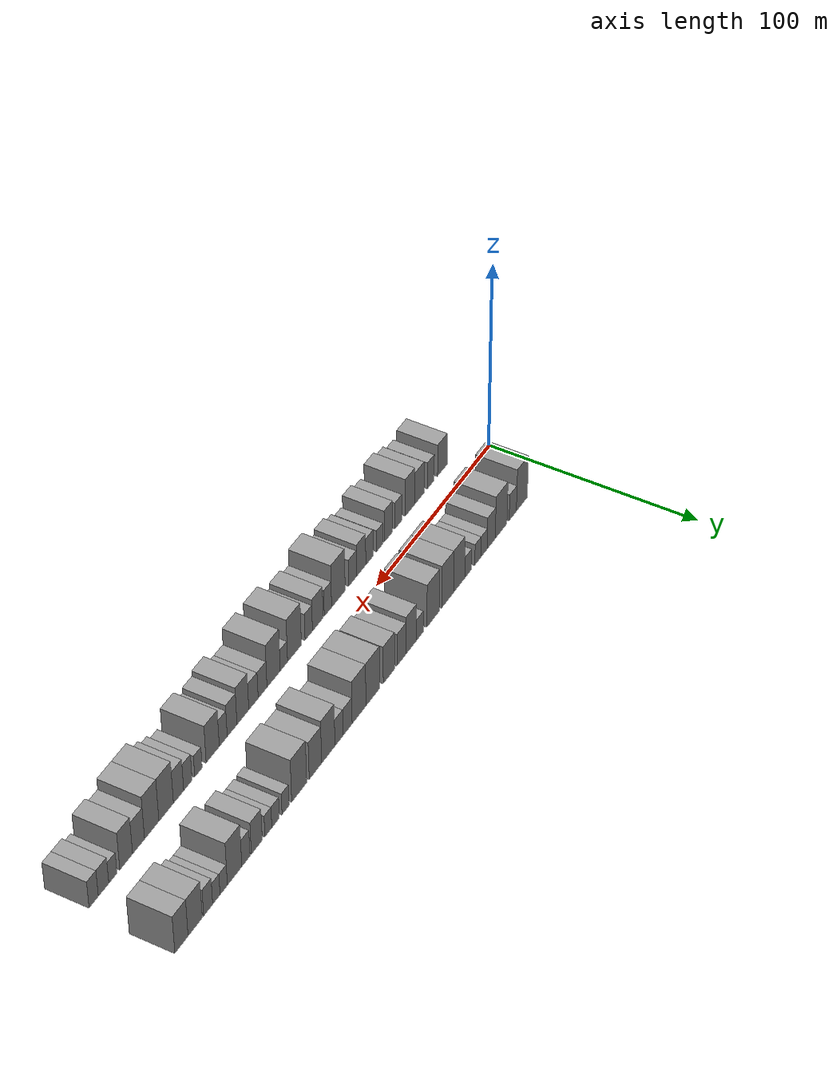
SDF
<sdf version="1.6">
 <world name="default">
  <scene>
   <sky><clouds><speed>12</speed></clouds></sky>
   <ambient>0.4 0.4 0.4 1</ambient>
   <background>0.7 0.7 0.7 1</background>
   <shadows>1</shadows>
  </scene>
  <gravity>0 0 -9.8066</gravity>
  <magnetic_field>6e-06 2.3e-05 -4.2e-05</magnetic_field>
  <physics default="0" name="default_physics" type="ode">
   <ode>
    <solver>
     <type>quick</type>
     <iters>10</iters>
     <sor>1.0</sor>
     <use_dynamic_moi_rescaling>0</use_dynamic_moi_rescaling>
    </solver>
    <constraints>
     <cfm>0</cfm>
     <erp>0.2</erp>
     <contact_max_correcting_vel>100</contact_max_correcting_vel>
     <contact_surface_layer>0.001</contact_surface_layer>
    </constraints>
   </ode>
   <max_step_size>0.004</max_step_size>
   <real_time_factor>1</real_time_factor>
   <real_time_update_rate>250</real_time_update_rate>
  </physics>
  <light name="sun" type="directional">
   <pose>0 0 10 0 0 0</pose>
   <diffuse>0.8 0.8 0.8 1</diffuse>
   <specular>0.2 0.2 0.2 1</specular>
   <attenuation>
    <range>1000</range>
    <constant>0.9</constant>
    <linear>0.01</linear>
    <quadratic>0.001</quadratic>
   </attenuation>
   <direction>-0.5 0.1 -0.9</direction>
  </light>
  <model name="building_1">
   <static>1</static>
   <pose>27.1083 20.0000 0 0.000000 0.000000 1.570796</pose>
   <link name="link">
    <pose>0 0 12.00 0 0 0</pose>
    <collision name="collision"><geometry><box><size>20.0000 10.2167 24.0000</size></box></geometry></collision>
    <visual name="visual">
     <cast_shadows>0</cast_shadows>
     <geometry><box><size>20.0000 10.2167 24.0000</size></box></geometry>
     <material>
      <script>
       <uri>model://grey_wall/materials/scripts</uri>
       <uri>model://grey_wall/materials/textures</uri>
       <name>vrc/grey_wall</name>
      </script>
     </material>
    </visual>
   </link>
  </model>
  <model name="building_2">
   <static>1</static>
   <pose>35.5468 20.0000 0 0.000000 0.000000 1.570796</pose>
   <link name="link">
    <pose>0 0 7.50 0 0 0</pose>
    <collision name="collision"><geometry><box><size>20.0000 6.6602 15.0000</size></box></geometry></collision>
    <visual name="visual">
     <cast_shadows>0</cast_shadows>
     <geometry><box><size>20.0000 6.6602 15.0000</size></box></geometry>
     <material>
      <script>
       <uri>model://grey_wall/materials/scripts</uri>
       <uri>model://grey_wall/materials/textures</uri>
       <name>vrc/grey_wall</name>
      </script>
     </material>
    </visual>
   </link>
  </model>
  <model name="building_3">
   <static>1</static>
   <pose>46.1967 20.0000 0 0.000000 0.000000 1.570796</pose>
   <link name="link">
    <pose>0 0 12.00 0 0 0</pose>
    <collision name="collision"><geometry><box><size>20.0000 10.6396 24.0000</size></box></geometry></collision>
    <visual name="visual">
     <cast_shadows>0</cast_shadows>
     <geometry><box><size>20.0000 10.6396 24.0000</size></box></geometry>
     <material>
      <script>
       <uri>model://grey_wall/materials/scripts</uri>
       <uri>model://grey_wall/materials/textures</uri>
       <name>vrc/grey_wall</name>
      </script>
     </material>
    </visual>
   </link>
  </model>
  <model name="building_4">
   <static>1</static>
   <pose>55.1658 20.0000 0 0.000000 0.000000 1.570796</pose>
   <link name="link">
    <pose>0 0 9.00 0 0 0</pose>
    <collision name="collision"><geometry><box><size>20.0000 7.2986 18.0000</size></box></geometry></collision>
    <visual name="visual">
     <cast_shadows>0</cast_shadows>
     <geometry><box><size>20.0000 7.2986 18.0000</size></box></geometry>
     <material>
      <script>
       <uri>model://grey_wall/materials/scripts</uri>
       <uri>model://grey_wall/materials/textures</uri>
       <name>vrc/grey_wall</name>
      </script>
     </material>
    </visual>
   </link>
  </model>
  <model name="building_5">
   <static>1</static>
   <pose>61.5858 20.0000 0 0.000000 0.000000 1.570796</pose>
   <link name="link">
    <pose>0 0 6.00 0 0 0</pose>
    <collision name="collision"><geometry><box><size>20.0000 5.5414 12.0000</size></box></geometry></collision>
    <visual name="visual">
     <cast_shadows>0</cast_shadows>
     <geometry><box><size>20.0000 5.5414 12.0000</size></box></geometry>
     <material>
      <script>
       <uri>model://grey_wall/materials/scripts</uri>
       <uri>model://grey_wall/materials/textures</uri>
       <name>vrc/grey_wall</name>
      </script>
     </material>
    </visual>
   </link>
  </model>
  <model name="building_6">
   <static>1</static>
   <pose>67.1333 20.0000 0 0.000000 0.000000 1.570796</pose>
   <link name="link">
    <pose>0 0 6.00 0 0 0</pose>
    <collision name="collision"><geometry><box><size>20.0000 5.5535 12.0000</size></box></geometry></collision>
    <visual name="visual">
     <cast_shadows>0</cast_shadows>
     <geometry><box><size>20.0000 5.5535 12.0000</size></box></geometry>
     <material>
      <script>
       <uri>model://grey_wall/materials/scripts</uri>
       <uri>model://grey_wall/materials/textures</uri>
       <name>vrc/grey_wall</name>
      </script>
     </material>
    </visual>
   </link>
  </model>
  <model name="building_7">
   <static>1</static>
   <pose>75.8970 20.0000 0 0.000000 0.000000 1.570796</pose>
   <link name="link">
    <pose>0 0 6.00 0 0 0</pose>
    <collision name="collision"><geometry><box><size>20.0000 5.9740 12.0000</size></box></geometry></collision>
    <visual name="visual">
     <cast_shadows>0</cast_shadows>
     <geometry><box><size>20.0000 5.9740 12.0000</size></box></geometry>
     <material>
      <script>
       <uri>model://grey_wall/materials/scripts</uri>
       <uri>model://grey_wall/materials/textures</uri>
       <name>vrc/grey_wall</name>
      </script>
     </material>
    </visual>
   </link>
  </model>
  <model name="building_8">
   <static>1</static>
   <pose>83.8002 20.0000 0 0.000000 0.000000 1.570796</pose>
   <link name="link">
    <pose>0 0 12.00 0 0 0</pose>
    <collision name="collision"><geometry><box><size>20.0000 9.8323 24.0000</size></box></geometry></collision>
    <visual name="visual">
     <cast_shadows>0</cast_shadows>
     <geometry><box><size>20.0000 9.8323 24.0000</size></box></geometry>
     <material>
      <script>
       <uri>model://grey_wall/materials/scripts</uri>
       <uri>model://grey_wall/materials/textures</uri>
       <name>vrc/grey_wall</name>
      </script>
     </material>
    </visual>
   </link>
  </model>
  <model name="building_9">
   <static>1</static>
   <pose>93.9026 20.0000 0 0.000000 0.000000 1.570796</pose>
   <link name="link">
    <pose>0 0 12.00 0 0 0</pose>
    <collision name="collision"><geometry><box><size>20.0000 10.3726 24.0000</size></box></geometry></collision>
    <visual name="visual">
     <cast_shadows>0</cast_shadows>
     <geometry><box><size>20.0000 10.3726 24.0000</size></box></geometry>
     <material>
      <script>
       <uri>model://grey_wall/materials/scripts</uri>
       <uri>model://grey_wall/materials/textures</uri>
       <name>vrc/grey_wall</name>
      </script>
     </material>
    </visual>
   </link>
  </model>
  <model name="building_10">
   <static>1</static>
   <pose>106.4162 20.0000 0 0.000000 0.000000 1.570796</pose>
   <link name="link">
    <pose>0 0 12.00 0 0 0</pose>
    <collision name="collision"><geometry><box><size>20.0000 10.6545 24.0000</size></box></geometry></collision>
    <visual name="visual">
     <cast_shadows>0</cast_shadows>
     <geometry><box><size>20.0000 10.6545 24.0000</size></box></geometry>
     <material>
      <script>
       <uri>model://grey_wall/materials/scripts</uri>
       <uri>model://grey_wall/materials/textures</uri>
       <name>vrc/grey_wall</name>
      </script>
     </material>
    </visual>
   </link>
  </model>
  <model name="building_11">
   <static>1</static>
   <pose>117.7329 20.0000 0 0.000000 0.000000 1.570796</pose>
   <link name="link">
    <pose>0 0 6.00 0 0 0</pose>
    <collision name="collision"><geometry><box><size>20.0000 5.9790 12.0000</size></box></geometry></collision>
    <visual name="visual">
     <cast_shadows>0</cast_shadows>
     <geometry><box><size>20.0000 5.9790 12.0000</size></box></geometry>
     <material>
      <script>
       <uri>model://grey_wall/materials/scripts</uri>
       <uri>model://grey_wall/materials/textures</uri>
       <name>vrc/grey_wall</name>
      </script>
     </material>
    </visual>
   </link>
  </model>
  <model name="building_12">
   <static>1</static>
   <pose>125.1094 20.0000 0 0.000000 0.000000 1.570796</pose>
   <link name="link">
    <pose>0 0 10.50 0 0 0</pose>
    <collision name="collision"><geometry><box><size>20.0000 8.7740 21.0000</size></box></geometry></collision>
    <visual name="visual">
     <cast_shadows>0</cast_shadows>
     <geometry><box><size>20.0000 8.7740 21.0000</size></box></geometry>
     <material>
      <script>
       <uri>model://grey_wall/materials/scripts</uri>
       <uri>model://grey_wall/materials/textures</uri>
       <name>vrc/grey_wall</name>
      </script>
     </material>
    </visual>
   </link>
  </model>
  <model name="building_13">
   <static>1</static>
   <pose>133.3089 20.0000 0 0.000000 0.000000 1.570796</pose>
   <link name="link">
    <pose>0 0 9.00 0 0 0</pose>
    <collision name="collision"><geometry><box><size>20.0000 7.6250 18.0000</size></box></geometry></collision>
    <visual name="visual">
     <cast_shadows>0</cast_shadows>
     <geometry><box><size>20.0000 7.6250 18.0000</size></box></geometry>
     <material>
      <script>
       <uri>model://grey_wall/materials/scripts</uri>
       <uri>model://grey_wall/materials/textures</uri>
       <name>vrc/grey_wall</name>
      </script>
     </material>
    </visual>
   </link>
  </model>
  <model name="building_14">
   <static>1</static>
   <pose>143.8704 20.0000 0 0.000000 0.000000 1.570796</pose>
   <link name="link">
    <pose>0 0 10.50 0 0 0</pose>
    <collision name="collision"><geometry><box><size>20.0000 9.4981 21.0000</size></box></geometry></collision>
    <visual name="visual">
     <cast_shadows>0</cast_shadows>
     <geometry><box><size>20.0000 9.4981 21.0000</size></box></geometry>
     <material>
      <script>
       <uri>model://grey_wall/materials/scripts</uri>
       <uri>model://grey_wall/materials/textures</uri>
       <name>vrc/grey_wall</name>
      </script>
     </material>
    </visual>
   </link>
  </model>
  <model name="building_15">
   <static>1</static>
   <pose>157.2429 20.0000 0 0.000000 0.000000 1.570796</pose>
   <link name="link">
    <pose>0 0 12.00 0 0 0</pose>
    <collision name="collision"><geometry><box><size>20.0000 11.2469 24.0000</size></box></geometry></collision>
    <visual name="visual">
     <cast_shadows>0</cast_shadows>
     <geometry><box><size>20.0000 11.2469 24.0000</size></box></geometry>
     <material>
      <script>
       <uri>model://grey_wall/materials/scripts</uri>
       <uri>model://grey_wall/materials/textures</uri>
       <name>vrc/grey_wall</name>
      </script>
     </material>
    </visual>
   </link>
  </model>
  <model name="building_16">
   <static>1</static>
   <pose>168.4958 20.0000 0 0.000000 0.000000 1.570796</pose>
   <link name="link">
    <pose>0 0 12.00 0 0 0</pose>
    <collision name="collision"><geometry><box><size>20.0000 11.2589 24.0000</size></box></geometry></collision>
    <visual name="visual">
     <cast_shadows>0</cast_shadows>
     <geometry><box><size>20.0000 11.2589 24.0000</size></box></geometry>
     <material>
      <script>
       <uri>model://grey_wall/materials/scripts</uri>
       <uri>model://grey_wall/materials/textures</uri>
       <name>vrc/grey_wall</name>
      </script>
     </material>
    </visual>
   </link>
  </model>
  <model name="building_17">
   <static>1</static>
   <pose>177.7843 20.0000 0 0.000000 0.000000 1.570796</pose>
   <link name="link">
    <pose>0 0 7.50 0 0 0</pose>
    <collision name="collision"><geometry><box><size>20.0000 7.3181 15.0000</size></box></geometry></collision>
    <visual name="visual">
     <cast_shadows>0</cast_shadows>
     <geometry><box><size>20.0000 7.3181 15.0000</size></box></geometry>
     <material>
      <script>
       <uri>model://grey_wall/materials/scripts</uri>
       <uri>model://grey_wall/materials/textures</uri>
       <name>vrc/grey_wall</name>
      </script>
     </material>
    </visual>
   </link>
  </model>
  <model name="building_18">
   <static>1</static>
   <pose>184.6922 20.0000 0 0.000000 0.000000 1.570796</pose>
   <link name="link">
    <pose>0 0 7.50 0 0 0</pose>
    <collision name="collision"><geometry><box><size>20.0000 6.4976 15.0000</size></box></geometry></collision>
    <visual name="visual">
     <cast_shadows>0</cast_shadows>
     <geometry><box><size>20.0000 6.4976 15.0000</size></box></geometry>
     <material>
      <script>
       <uri>model://grey_wall/materials/scripts</uri>
       <uri>model://grey_wall/materials/textures</uri>
       <name>vrc/grey_wall</name>
      </script>
     </material>
    </visual>
   </link>
  </model>
  <model name="building_19">
   <static>1</static>
   <pose>193.2254 20.0000 0 0.000000 0.000000 1.570796</pose>
   <link name="link">
    <pose>0 0 12.00 0 0 0</pose>
    <collision name="collision"><geometry><box><size>20.0000 10.5688 24.0000</size></box></geometry></collision>
    <visual name="visual">
     <cast_shadows>0</cast_shadows>
     <geometry><box><size>20.0000 10.5688 24.0000</size></box></geometry>
     <material>
      <script>
       <uri>model://grey_wall/materials/scripts</uri>
       <uri>model://grey_wall/materials/textures</uri>
       <name>vrc/grey_wall</name>
      </script>
     </material>
    </visual>
   </link>
  </model>
  <model name="building_20">
   <static>1</static>
   <pose>203.3958 20.0000 0 0.000000 0.000000 1.570796</pose>
   <link name="link">
    <pose>0 0 10.50 0 0 0</pose>
    <collision name="collision"><geometry><box><size>20.0000 9.7721 21.0000</size></box></geometry></collision>
    <visual name="visual">
     <cast_shadows>0</cast_shadows>
     <geometry><box><size>20.0000 9.7721 21.0000</size></box></geometry>
     <material>
      <script>
       <uri>model://grey_wall/materials/scripts</uri>
       <uri>model://grey_wall/materials/textures</uri>
       <name>vrc/grey_wall</name>
      </script>
     </material>
    </visual>
   </link>
  </model>
  <model name="building_21">
   <static>1</static>
   <pose>216.1008 20.0000 0 0.000000 0.000000 1.570796</pose>
   <link name="link">
    <pose>0 0 12.00 0 0 0</pose>
    <collision name="collision"><geometry><box><size>20.0000 11.6379 24.0000</size></box></geometry></collision>
    <visual name="visual">
     <cast_shadows>0</cast_shadows>
     <geometry><box><size>20.0000 11.6379 24.0000</size></box></geometry>
     <material>
      <script>
       <uri>model://grey_wall/materials/scripts</uri>
       <uri>model://grey_wall/materials/textures</uri>
       <name>vrc/grey_wall</name>
      </script>
     </material>
    </visual>
   </link>
  </model>
  <model name="building_22">
   <static>1</static>
   <pose>226.6469 20.0000 0 0.000000 0.000000 1.570796</pose>
   <link name="link">
    <pose>0 0 6.00 0 0 0</pose>
    <collision name="collision"><geometry><box><size>20.0000 5.4542 12.0000</size></box></geometry></collision>
    <visual name="visual">
     <cast_shadows>0</cast_shadows>
     <geometry><box><size>20.0000 5.4542 12.0000</size></box></geometry>
     <material>
      <script>
       <uri>model://grey_wall/materials/scripts</uri>
       <uri>model://grey_wall/materials/textures</uri>
       <name>vrc/grey_wall</name>
      </script>
     </material>
    </visual>
   </link>
  </model>
  <model name="building_23">
   <static>1</static>
   <pose>234.2700 20.0000 0 0.000000 0.000000 1.570796</pose>
   <link name="link">
    <pose>0 0 6.00 0 0 0</pose>
    <collision name="collision"><geometry><box><size>20.0000 5.7919 12.0000</size></box></geometry></collision>
    <visual name="visual">
     <cast_shadows>0</cast_shadows>
     <geometry><box><size>20.0000 5.7919 12.0000</size></box></geometry>
     <material>
      <script>
       <uri>model://grey_wall/materials/scripts</uri>
       <uri>model://grey_wall/materials/textures</uri>
       <name>vrc/grey_wall</name>
      </script>
     </material>
    </visual>
   </link>
  </model>
  <model name="building_24">
   <static>1</static>
   <pose>239.7805 20.0000 0 0.000000 0.000000 1.570796</pose>
   <link name="link">
    <pose>0 0 6.00 0 0 0</pose>
    <collision name="collision"><geometry><box><size>20.0000 5.2292 12.0000</size></box></geometry></collision>
    <visual name="visual">
     <cast_shadows>0</cast_shadows>
     <geometry><box><size>20.0000 5.2292 12.0000</size></box></geometry>
     <material>
      <script>
       <uri>model://grey_wall/materials/scripts</uri>
       <uri>model://grey_wall/materials/textures</uri>
       <name>vrc/grey_wall</name>
      </script>
     </material>
    </visual>
   </link>
  </model>
  <model name="building_25">
   <static>1</static>
   <pose>248.5028 20.0000 0 0.000000 0.000000 1.570796</pose>
   <link name="link">
    <pose>0 0 9.00 0 0 0</pose>
    <collision name="collision"><geometry><box><size>20.0000 8.2153 18.0000</size></box></geometry></collision>
    <visual name="visual">
     <cast_shadows>0</cast_shadows>
     <geometry><box><size>20.0000 8.2153 18.0000</size></box></geometry>
     <material>
      <script>
       <uri>model://grey_wall/materials/scripts</uri>
       <uri>model://grey_wall/materials/textures</uri>
       <name>vrc/grey_wall</name>
      </script>
     </material>
    </visual>
   </link>
  </model>
  <model name="building_26">
   <static>1</static>
   <pose>256.6438 20.0000 0 0.000000 0.000000 1.570796</pose>
   <link name="link">
    <pose>0 0 7.50 0 0 0</pose>
    <collision name="collision"><geometry><box><size>20.0000 6.0667 15.0000</size></box></geometry></collision>
    <visual name="visual">
     <cast_shadows>0</cast_shadows>
     <geometry><box><size>20.0000 6.0667 15.0000</size></box></geometry>
     <material>
      <script>
       <uri>model://grey_wall/materials/scripts</uri>
       <uri>model://grey_wall/materials/textures</uri>
       <name>vrc/grey_wall</name>
      </script>
     </material>
    </visual>
   </link>
  </model>
  <model name="building_27">
   <static>1</static>
   <pose>265.0303 20.0000 0 0.000000 0.000000 1.570796</pose>
   <link name="link">
    <pose>0 0 12.00 0 0 0</pose>
    <collision name="collision"><geometry><box><size>20.0000 10.7064 24.0000</size></box></geometry></collision>
    <visual name="visual">
     <cast_shadows>0</cast_shadows>
     <geometry><box><size>20.0000 10.7064 24.0000</size></box></geometry>
     <material>
      <script>
       <uri>model://grey_wall/materials/scripts</uri>
       <uri>model://grey_wall/materials/textures</uri>
       <name>vrc/grey_wall</name>
      </script>
     </material>
    </visual>
   </link>
  </model>
  <model name="building_28">
   <static>1</static>
   <pose>273.0879 20.0000 0 0.000000 0.000000 1.570796</pose>
   <link name="link">
    <pose>0 0 6.00 0 0 0</pose>
    <collision name="collision"><geometry><box><size>20.0000 5.4087 12.0000</size></box></geometry></collision>
    <visual name="visual">
     <cast_shadows>0</cast_shadows>
     <geometry><box><size>20.0000 5.4087 12.0000</size></box></geometry>
     <material>
      <script>
       <uri>model://grey_wall/materials/scripts</uri>
       <uri>model://grey_wall/materials/textures</uri>
       <name>vrc/grey_wall</name>
      </script>
     </material>
    </visual>
   </link>
  </model>
  <model name="building_29">
   <static>1</static>
   <pose>278.4785 20.0000 0 0.000000 0.000000 1.570796</pose>
   <link name="link">
    <pose>0 0 6.00 0 0 0</pose>
    <collision name="collision"><geometry><box><size>20.0000 5.3727 12.0000</size></box></geometry></collision>
    <visual name="visual">
     <cast_shadows>0</cast_shadows>
     <geometry><box><size>20.0000 5.3727 12.0000</size></box></geometry>
     <material>
      <script>
       <uri>model://grey_wall/materials/scripts</uri>
       <uri>model://grey_wall/materials/textures</uri>
       <name>vrc/grey_wall</name>
      </script>
     </material>
    </visual>
   </link>
  </model>
  <model name="building_30">
   <static>1</static>
   <pose>284.4347 20.0000 0 0.000000 0.000000 1.570796</pose>
   <link name="link">
    <pose>0 0 7.50 0 0 0</pose>
    <collision name="collision"><geometry><box><size>20.0000 6.5397 15.0000</size></box></geometry></collision>
    <visual name="visual">
     <cast_shadows>0</cast_shadows>
     <geometry><box><size>20.0000 6.5397 15.0000</size></box></geometry>
     <material>
      <script>
       <uri>model://grey_wall/materials/scripts</uri>
       <uri>model://grey_wall/materials/textures</uri>
       <name>vrc/grey_wall</name>
      </script>
     </material>
    </visual>
   </link>
  </model>
  <model name="building_31">
   <static>1</static>
   <pose>293.8150 20.0000 0 0.000000 0.000000 1.570796</pose>
   <link name="link">
    <pose>0 0 10.50 0 0 0</pose>
    <collision name="collision"><geometry><box><size>20.0000 10.2208 21.0000</size></box></geometry></collision>
    <visual name="visual">
     <cast_shadows>0</cast_shadows>
     <geometry><box><size>20.0000 10.2208 21.0000</size></box></geometry>
     <material>
      <script>
       <uri>model://grey_wall/materials/scripts</uri>
       <uri>model://grey_wall/materials/textures</uri>
       <name>vrc/grey_wall</name>
      </script>
     </material>
    </visual>
   </link>
  </model>
  <model name="building_32">
   <static>1</static>
   <pose>303.6363 20.0000 0 0.000000 0.000000 1.570796</pose>
   <link name="link">
    <pose>0 0 10.50 0 0 0</pose>
    <collision name="collision"><geometry><box><size>20.0000 9.4219 21.0000</size></box></geometry></collision>
    <visual name="visual">
     <cast_shadows>0</cast_shadows>
     <geometry><box><size>20.0000 9.4219 21.0000</size></box></geometry>
     <material>
      <script>
       <uri>model://grey_wall/materials/scripts</uri>
       <uri>model://grey_wall/materials/textures</uri>
       <name>vrc/grey_wall</name>
      </script>
     </material>
    </visual>
   </link>
  </model>
  <model name="building_33">
   <static>1</static>
   <pose>24.3703 -20.0000 0 0.000000 0.000000 1.570796</pose>
   <link name="link">
    <pose>0 0 9.00 0 0 0</pose>
    <collision name="collision"><geometry><box><size>20.0000 8.7405 18.0000</size></box></geometry></collision>
    <visual name="visual">
     <cast_shadows>0</cast_shadows>
     <geometry><box><size>20.0000 8.7405 18.0000</size></box></geometry>
     <material>
      <script>
       <uri>model://grey_wall/materials/scripts</uri>
       <uri>model://grey_wall/materials/textures</uri>
       <name>vrc/grey_wall</name>
      </script>
     </material>
    </visual>
   </link>
  </model>
  <model name="building_34">
   <static>1</static>
   <pose>34.7464 -20.0000 0 0.000000 0.000000 1.570796</pose>
   <link name="link">
    <pose>0 0 7.50 0 0 0</pose>
    <collision name="collision"><geometry><box><size>20.0000 6.0119 15.0000</size></box></geometry></collision>
    <visual name="visual">
     <cast_shadows>0</cast_shadows>
     <geometry><box><size>20.0000 6.0119 15.0000</size></box></geometry>
     <material>
      <script>
       <uri>model://grey_wall/materials/scripts</uri>
       <uri>model://grey_wall/materials/textures</uri>
       <name>vrc/grey_wall</name>
      </script>
     </material>
    </visual>
   </link>
  </model>
  <model name="building_35">
   <static>1</static>
   <pose>44.8267 -20.0000 0 0.000000 0.000000 1.570796</pose>
   <link name="link">
    <pose>0 0 9.00 0 0 0</pose>
    <collision name="collision"><geometry><box><size>20.0000 8.1486 18.0000</size></box></geometry></collision>
    <visual name="visual">
     <cast_shadows>0</cast_shadows>
     <geometry><box><size>20.0000 8.1486 18.0000</size></box></geometry>
     <material>
      <script>
       <uri>model://grey_wall/materials/scripts</uri>
       <uri>model://grey_wall/materials/textures</uri>
       <name>vrc/grey_wall</name>
      </script>
     </material>
    </visual>
   </link>
  </model>
  <model name="building_36">
   <static>1</static>
   <pose>53.1172 -20.0000 0 0.000000 0.000000 1.570796</pose>
   <link name="link">
    <pose>0 0 10.50 0 0 0</pose>
    <collision name="collision"><geometry><box><size>20.0000 8.4324 21.0000</size></box></geometry></collision>
    <visual name="visual">
     <cast_shadows>0</cast_shadows>
     <geometry><box><size>20.0000 8.4324 21.0000</size></box></geometry>
     <material>
      <script>
       <uri>model://grey_wall/materials/scripts</uri>
       <uri>model://grey_wall/materials/textures</uri>
       <name>vrc/grey_wall</name>
      </script>
     </material>
    </visual>
   </link>
  </model>
  <model name="building_37">
   <static>1</static>
   <pose>63.4270 -20.0000 0 0.000000 0.000000 1.570796</pose>
   <link name="link">
    <pose>0 0 7.50 0 0 0</pose>
    <collision name="collision"><geometry><box><size>20.0000 6.1872 15.0000</size></box></geometry></collision>
    <visual name="visual">
     <cast_shadows>0</cast_shadows>
     <geometry><box><size>20.0000 6.1872 15.0000</size></box></geometry>
     <material>
      <script>
       <uri>model://grey_wall/materials/scripts</uri>
       <uri>model://grey_wall/materials/textures</uri>
       <name>vrc/grey_wall</name>
      </script>
     </material>
    </visual>
   </link>
  </model>
  <model name="building_38">
   <static>1</static>
   <pose>72.1974 -20.0000 0 0.000000 0.000000 1.570796</pose>
   <link name="link">
    <pose>0 0 9.00 0 0 0</pose>
    <collision name="collision"><geometry><box><size>20.0000 7.3535 18.0000</size></box></geometry></collision>
    <visual name="visual">
     <cast_shadows>0</cast_shadows>
     <geometry><box><size>20.0000 7.3535 18.0000</size></box></geometry>
     <material>
      <script>
       <uri>model://grey_wall/materials/scripts</uri>
       <uri>model://grey_wall/materials/textures</uri>
       <name>vrc/grey_wall</name>
      </script>
     </material>
    </visual>
   </link>
  </model>
  <model name="building_39">
   <static>1</static>
   <pose>79.6058 -20.0000 0 0.000000 0.000000 1.570796</pose>
   <link name="link">
    <pose>0 0 6.00 0 0 0</pose>
    <collision name="collision"><geometry><box><size>20.0000 5.4634 12.0000</size></box></geometry></collision>
    <visual name="visual">
     <cast_shadows>0</cast_shadows>
     <geometry><box><size>20.0000 5.4634 12.0000</size></box></geometry>
     <material>
      <script>
       <uri>model://grey_wall/materials/scripts</uri>
       <uri>model://grey_wall/materials/textures</uri>
       <name>vrc/grey_wall</name>
      </script>
     </material>
    </visual>
   </link>
  </model>
  <model name="building_40">
   <static>1</static>
   <pose>88.5300 -20.0000 0 0.000000 0.000000 1.570796</pose>
   <link name="link">
    <pose>0 0 7.50 0 0 0</pose>
    <collision name="collision"><geometry><box><size>20.0000 6.3849 15.0000</size></box></geometry></collision>
    <visual name="visual">
     <cast_shadows>0</cast_shadows>
     <geometry><box><size>20.0000 6.3849 15.0000</size></box></geometry>
     <material>
      <script>
       <uri>model://grey_wall/materials/scripts</uri>
       <uri>model://grey_wall/materials/textures</uri>
       <name>vrc/grey_wall</name>
      </script>
     </material>
    </visual>
   </link>
  </model>
  <model name="building_41">
   <static>1</static>
   <pose>95.6613 -20.0000 0 0.000000 0.000000 1.570796</pose>
   <link name="link">
    <pose>0 0 9.00 0 0 0</pose>
    <collision name="collision"><geometry><box><size>20.0000 7.8778 18.0000</size></box></geometry></collision>
    <visual name="visual">
     <cast_shadows>0</cast_shadows>
     <geometry><box><size>20.0000 7.8778 18.0000</size></box></geometry>
     <material>
      <script>
       <uri>model://grey_wall/materials/scripts</uri>
       <uri>model://grey_wall/materials/textures</uri>
       <name>vrc/grey_wall</name>
      </script>
     </material>
    </visual>
   </link>
  </model>
  <model name="building_42">
   <static>1</static>
   <pose>102.9275 -20.0000 0 0.000000 0.000000 1.570796</pose>
   <link name="link">
    <pose>0 0 7.50 0 0 0</pose>
    <collision name="collision"><geometry><box><size>20.0000 6.6546 15.0000</size></box></geometry></collision>
    <visual name="visual">
     <cast_shadows>0</cast_shadows>
     <geometry><box><size>20.0000 6.6546 15.0000</size></box></geometry>
     <material>
      <script>
       <uri>model://grey_wall/materials/scripts</uri>
       <uri>model://grey_wall/materials/textures</uri>
       <name>vrc/grey_wall</name>
      </script>
     </material>
    </visual>
   </link>
  </model>
  <model name="building_43">
   <static>1</static>
   <pose>114.9325 -20.0000 0 0.000000 0.000000 1.570796</pose>
   <link name="link">
    <pose>0 0 12.00 0 0 0</pose>
    <collision name="collision"><geometry><box><size>20.0000 11.3554 24.0000</size></box></geometry></collision>
    <visual name="visual">
     <cast_shadows>0</cast_shadows>
     <geometry><box><size>20.0000 11.3554 24.0000</size></box></geometry>
     <material>
      <script>
       <uri>model://grey_wall/materials/scripts</uri>
       <uri>model://grey_wall/materials/textures</uri>
       <name>vrc/grey_wall</name>
      </script>
     </material>
    </visual>
   </link>
  </model>
  <model name="building_44">
   <static>1</static>
   <pose>123.6284 -20.0000 0 0.000000 0.000000 1.570796</pose>
   <link name="link">
    <pose>0 0 7.50 0 0 0</pose>
    <collision name="collision"><geometry><box><size>20.0000 6.0364 15.0000</size></box></geometry></collision>
    <visual name="visual">
     <cast_shadows>0</cast_shadows>
     <geometry><box><size>20.0000 6.0364 15.0000</size></box></geometry>
     <material>
      <script>
       <uri>model://grey_wall/materials/scripts</uri>
       <uri>model://grey_wall/materials/textures</uri>
       <name>vrc/grey_wall</name>
      </script>
     </material>
    </visual>
   </link>
  </model>
  <model name="building_45">
   <static>1</static>
   <pose>132.0283 -20.0000 0 0.000000 0.000000 1.570796</pose>
   <link name="link">
    <pose>0 0 9.00 0 0 0</pose>
    <collision name="collision"><geometry><box><size>20.0000 8.7635 18.0000</size></box></geometry></collision>
    <visual name="visual">
     <cast_shadows>0</cast_shadows>
     <geometry><box><size>20.0000 8.7635 18.0000</size></box></geometry>
     <material>
      <script>
       <uri>model://grey_wall/materials/scripts</uri>
       <uri>model://grey_wall/materials/textures</uri>
       <name>vrc/grey_wall</name>
      </script>
     </material>
    </visual>
   </link>
  </model>
  <model name="building_46">
   <static>1</static>
   <pose>139.4301 -20.0000 0 0.000000 0.000000 1.570796</pose>
   <link name="link">
    <pose>0 0 7.50 0 0 0</pose>
    <collision name="collision"><geometry><box><size>20.0000 6.0399 15.0000</size></box></geometry></collision>
    <visual name="visual">
     <cast_shadows>0</cast_shadows>
     <geometry><box><size>20.0000 6.0399 15.0000</size></box></geometry>
     <material>
      <script>
       <uri>model://grey_wall/materials/scripts</uri>
       <uri>model://grey_wall/materials/textures</uri>
       <name>vrc/grey_wall</name>
      </script>
     </material>
    </visual>
   </link>
  </model>
  <model name="building_47">
   <static>1</static>
   <pose>151.0264 -20.0000 0 0.000000 0.000000 1.570796</pose>
   <link name="link">
    <pose>0 0 12.00 0 0 0</pose>
    <collision name="collision"><geometry><box><size>20.0000 11.1528 24.0000</size></box></geometry></collision>
    <visual name="visual">
     <cast_shadows>0</cast_shadows>
     <geometry><box><size>20.0000 11.1528 24.0000</size></box></geometry>
     <material>
      <script>
       <uri>model://grey_wall/materials/scripts</uri>
       <uri>model://grey_wall/materials/textures</uri>
       <name>vrc/grey_wall</name>
      </script>
     </material>
    </visual>
   </link>
  </model>
  <model name="building_48">
   <static>1</static>
   <pose>159.5461 -20.0000 0 0.000000 0.000000 1.570796</pose>
   <link name="link">
    <pose>0 0 6.00 0 0 0</pose>
    <collision name="collision"><geometry><box><size>20.0000 5.8864 12.0000</size></box></geometry></collision>
    <visual name="visual">
     <cast_shadows>0</cast_shadows>
     <geometry><box><size>20.0000 5.8864 12.0000</size></box></geometry>
     <material>
      <script>
       <uri>model://grey_wall/materials/scripts</uri>
       <uri>model://grey_wall/materials/textures</uri>
       <name>vrc/grey_wall</name>
      </script>
     </material>
    </visual>
   </link>
  </model>
  <model name="building_49">
   <static>1</static>
   <pose>167.7622 -20.0000 0 0.000000 0.000000 1.570796</pose>
   <link name="link">
    <pose>0 0 12.00 0 0 0</pose>
    <collision name="collision"><geometry><box><size>20.0000 10.5459 24.0000</size></box></geometry></collision>
    <visual name="visual">
     <cast_shadows>0</cast_shadows>
     <geometry><box><size>20.0000 10.5459 24.0000</size></box></geometry>
     <material>
      <script>
       <uri>model://grey_wall/materials/scripts</uri>
       <uri>model://grey_wall/materials/textures</uri>
       <name>vrc/grey_wall</name>
      </script>
     </material>
    </visual>
   </link>
  </model>
  <model name="building_50">
   <static>1</static>
   <pose>176.5200 -20.0000 0 0.000000 0.000000 1.570796</pose>
   <link name="link">
    <pose>0 0 7.50 0 0 0</pose>
    <collision name="collision"><geometry><box><size>20.0000 6.9697 15.0000</size></box></geometry></collision>
    <visual name="visual">
     <cast_shadows>0</cast_shadows>
     <geometry><box><size>20.0000 6.9697 15.0000</size></box></geometry>
     <material>
      <script>
       <uri>model://grey_wall/materials/scripts</uri>
       <uri>model://grey_wall/materials/textures</uri>
       <name>vrc/grey_wall</name>
      </script>
     </material>
    </visual>
   </link>
  </model>
  <model name="building_51">
   <static>1</static>
   <pose>183.6822 -20.0000 0 0.000000 0.000000 1.570796</pose>
   <link name="link">
    <pose>0 0 7.50 0 0 0</pose>
    <collision name="collision"><geometry><box><size>20.0000 7.3549 15.0000</size></box></geometry></collision>
    <visual name="visual">
     <cast_shadows>0</cast_shadows>
     <geometry><box><size>20.0000 7.3549 15.0000</size></box></geometry>
     <material>
      <script>
       <uri>model://grey_wall/materials/scripts</uri>
       <uri>model://grey_wall/materials/textures</uri>
       <name>vrc/grey_wall</name>
      </script>
     </material>
    </visual>
   </link>
  </model>
  <model name="building_52">
   <static>1</static>
   <pose>191.9594 -20.0000 0 0.000000 0.000000 1.570796</pose>
   <link name="link">
    <pose>0 0 10.50 0 0 0</pose>
    <collision name="collision"><geometry><box><size>20.0000 9.1994 21.0000</size></box></geometry></collision>
    <visual name="visual">
     <cast_shadows>0</cast_shadows>
     <geometry><box><size>20.0000 9.1994 21.0000</size></box></geometry>
     <material>
      <script>
       <uri>model://grey_wall/materials/scripts</uri>
       <uri>model://grey_wall/materials/textures</uri>
       <name>vrc/grey_wall</name>
      </script>
     </material>
    </visual>
   </link>
  </model>
  <model name="building_53">
   <static>1</static>
   <pose>200.3121 -20.0000 0 0.000000 0.000000 1.570796</pose>
   <link name="link">
    <pose>0 0 9.00 0 0 0</pose>
    <collision name="collision"><geometry><box><size>20.0000 7.5061 18.0000</size></box></geometry></collision>
    <visual name="visual">
     <cast_shadows>0</cast_shadows>
     <geometry><box><size>20.0000 7.5061 18.0000</size></box></geometry>
     <material>
      <script>
       <uri>model://grey_wall/materials/scripts</uri>
       <uri>model://grey_wall/materials/textures</uri>
       <name>vrc/grey_wall</name>
      </script>
     </material>
    </visual>
   </link>
  </model>
  <model name="building_54">
   <static>1</static>
   <pose>207.1144 -20.0000 0 0.000000 0.000000 1.570796</pose>
   <link name="link">
    <pose>0 0 7.50 0 0 0</pose>
    <collision name="collision"><geometry><box><size>20.0000 6.0985 15.0000</size></box></geometry></collision>
    <visual name="visual">
     <cast_shadows>0</cast_shadows>
     <geometry><box><size>20.0000 6.0985 15.0000</size></box></geometry>
     <material>
      <script>
       <uri>model://grey_wall/materials/scripts</uri>
       <uri>model://grey_wall/materials/textures</uri>
       <name>vrc/grey_wall</name>
      </script>
     </material>
    </visual>
   </link>
  </model>
  <model name="building_55">
   <static>1</static>
   <pose>215.1546 -20.0000 0 0.000000 0.000000 1.570796</pose>
   <link name="link">
    <pose>0 0 10.50 0 0 0</pose>
    <collision name="collision"><geometry><box><size>20.0000 9.9819 21.0000</size></box></geometry></collision>
    <visual name="visual">
     <cast_shadows>0</cast_shadows>
     <geometry><box><size>20.0000 9.9819 21.0000</size></box></geometry>
     <material>
      <script>
       <uri>model://grey_wall/materials/scripts</uri>
       <uri>model://grey_wall/materials/textures</uri>
       <name>vrc/grey_wall</name>
      </script>
     </material>
    </visual>
   </link>
  </model>
  <model name="building_56">
   <static>1</static>
   <pose>225.9427 -20.0000 0 0.000000 0.000000 1.570796</pose>
   <link name="link">
    <pose>0 0 6.00 0 0 0</pose>
    <collision name="collision"><geometry><box><size>20.0000 5.5945 12.0000</size></box></geometry></collision>
    <visual name="visual">
     <cast_shadows>0</cast_shadows>
     <geometry><box><size>20.0000 5.5945 12.0000</size></box></geometry>
     <material>
      <script>
       <uri>model://grey_wall/materials/scripts</uri>
       <uri>model://grey_wall/materials/textures</uri>
       <name>vrc/grey_wall</name>
      </script>
     </material>
    </visual>
   </link>
  </model>
  <model name="building_57">
   <static>1</static>
   <pose>233.8667 -20.0000 0 0.000000 0.000000 1.570796</pose>
   <link name="link">
    <pose>0 0 7.50 0 0 0</pose>
    <collision name="collision"><geometry><box><size>20.0000 6.2535 15.0000</size></box></geometry></collision>
    <visual name="visual">
     <cast_shadows>0</cast_shadows>
     <geometry><box><size>20.0000 6.2535 15.0000</size></box></geometry>
     <material>
      <script>
       <uri>model://grey_wall/materials/scripts</uri>
       <uri>model://grey_wall/materials/textures</uri>
       <name>vrc/grey_wall</name>
      </script>
     </material>
    </visual>
   </link>
  </model>
  <model name="building_58">
   <static>1</static>
   <pose>240.7866 -20.0000 0 0.000000 0.000000 1.570796</pose>
   <link name="link">
    <pose>0 0 9.00 0 0 0</pose>
    <collision name="collision"><geometry><box><size>20.0000 7.5861 18.0000</size></box></geometry></collision>
    <visual name="visual">
     <cast_shadows>0</cast_shadows>
     <geometry><box><size>20.0000 7.5861 18.0000</size></box></geometry>
     <material>
      <script>
       <uri>model://grey_wall/materials/scripts</uri>
       <uri>model://grey_wall/materials/textures</uri>
       <name>vrc/grey_wall</name>
      </script>
     </material>
    </visual>
   </link>
  </model>
  <model name="building_59">
   <static>1</static>
   <pose>249.9186 -20.0000 0 0.000000 0.000000 1.570796</pose>
   <link name="link">
    <pose>0 0 12.00 0 0 0</pose>
    <collision name="collision"><geometry><box><size>20.0000 10.6780 24.0000</size></box></geometry></collision>
    <visual name="visual">
     <cast_shadows>0</cast_shadows>
     <geometry><box><size>20.0000 10.6780 24.0000</size></box></geometry>
     <material>
      <script>
       <uri>model://grey_wall/materials/scripts</uri>
       <uri>model://grey_wall/materials/textures</uri>
       <name>vrc/grey_wall</name>
      </script>
     </material>
    </visual>
   </link>
  </model>
  <model name="building_60">
   <static>1</static>
   <pose>260.4790 -20.0000 0 0.000000 0.000000 1.570796</pose>
   <link name="link">
    <pose>0 0 12.00 0 0 0</pose>
    <collision name="collision"><geometry><box><size>20.0000 10.4428 24.0000</size></box></geometry></collision>
    <visual name="visual">
     <cast_shadows>0</cast_shadows>
     <geometry><box><size>20.0000 10.4428 24.0000</size></box></geometry>
     <material>
      <script>
       <uri>model://grey_wall/materials/scripts</uri>
       <uri>model://grey_wall/materials/textures</uri>
       <name>vrc/grey_wall</name>
      </script>
     </material>
    </visual>
   </link>
  </model>
  <model name="building_61">
   <static>1</static>
   <pose>270.0182 -20.0000 0 0.000000 0.000000 1.570796</pose>
   <link name="link">
    <pose>0 0 9.00 0 0 0</pose>
    <collision name="collision"><geometry><box><size>20.0000 8.6356 18.0000</size></box></geometry></collision>
    <visual name="visual">
     <cast_shadows>0</cast_shadows>
     <geometry><box><size>20.0000 8.6356 18.0000</size></box></geometry>
     <material>
      <script>
       <uri>model://grey_wall/materials/scripts</uri>
       <uri>model://grey_wall/materials/textures</uri>
       <name>vrc/grey_wall</name>
      </script>
     </material>
    </visual>
   </link>
  </model>
  <model name="building_62">
   <static>1</static>
   <pose>278.9018 -20.0000 0 0.000000 0.000000 1.570796</pose>
   <link name="link">
    <pose>0 0 10.50 0 0 0</pose>
    <collision name="collision"><geometry><box><size>20.0000 9.1316 21.0000</size></box></geometry></collision>
    <visual name="visual">
     <cast_shadows>0</cast_shadows>
     <geometry><box><size>20.0000 9.1316 21.0000</size></box></geometry>
     <material>
      <script>
       <uri>model://grey_wall/materials/scripts</uri>
       <uri>model://grey_wall/materials/textures</uri>
       <name>vrc/grey_wall</name>
      </script>
     </material>
    </visual>
   </link>
  </model>
  <model name="building_63">
   <static>1</static>
   <pose>288.3574 -20.0000 0 0.000000 0.000000 1.570796</pose>
   <link name="link">
    <pose>0 0 6.00 0 0 0</pose>
    <collision name="collision"><geometry><box><size>20.0000 5.7794 12.0000</size></box></geometry></collision>
    <visual name="visual">
     <cast_shadows>0</cast_shadows>
     <geometry><box><size>20.0000 5.7794 12.0000</size></box></geometry>
     <material>
      <script>
       <uri>model://grey_wall/materials/scripts</uri>
       <uri>model://grey_wall/materials/textures</uri>
       <name>vrc/grey_wall</name>
      </script>
     </material>
    </visual>
   </link>
  </model>
  <model name="building_64">
   <static>1</static>
   <pose>294.9369 -20.0000 0 0.000000 0.000000 1.570796</pose>
   <link name="link">
    <pose>0 0 7.50 0 0 0</pose>
    <collision name="collision"><geometry><box><size>20.0000 7.3797 15.0000</size></box></geometry></collision>
    <visual name="visual">
     <cast_shadows>0</cast_shadows>
     <geometry><box><size>20.0000 7.3797 15.0000</size></box></geometry>
     <material>
      <script>
       <uri>model://grey_wall/materials/scripts</uri>
       <uri>model://grey_wall/materials/textures</uri>
       <name>vrc/grey_wall</name>
      </script>
     </material>
    </visual>
   </link>
  </model>
  <model name="building_65">
   <static>1</static>
   <pose>301.8549 -20.0000 0 0.000000 0.000000 1.570796</pose>
   <link name="link">
    <pose>0 0 7.50 0 0 0</pose>
    <collision name="collision"><geometry><box><size>20.0000 6.4562 15.0000</size></box></geometry></collision>
    <visual name="visual">
     <cast_shadows>0</cast_shadows>
     <geometry><box><size>20.0000 6.4562 15.0000</size></box></geometry>
     <material>
      <script>
       <uri>model://grey_wall/materials/scripts</uri>
       <uri>model://grey_wall/materials/textures</uri>
       <name>vrc/grey_wall</name>
      </script>
     </material>
    </visual>
   </link>
  </model>
 </world>
</sdf>
